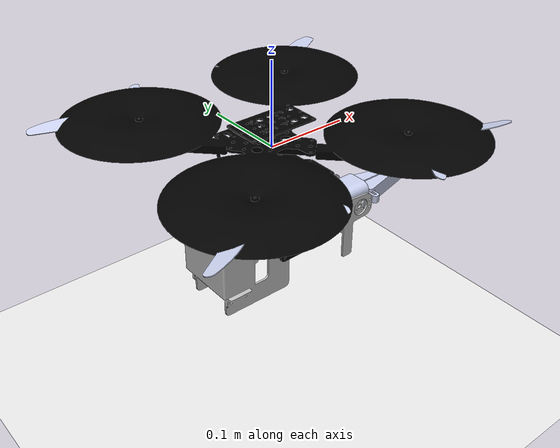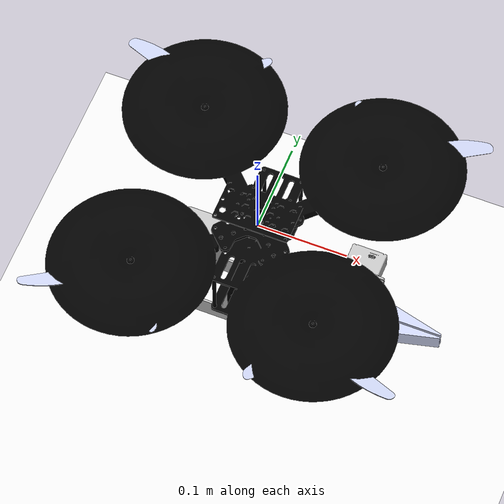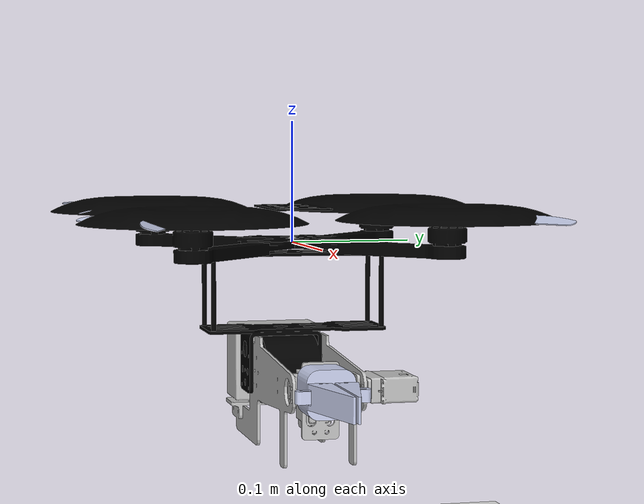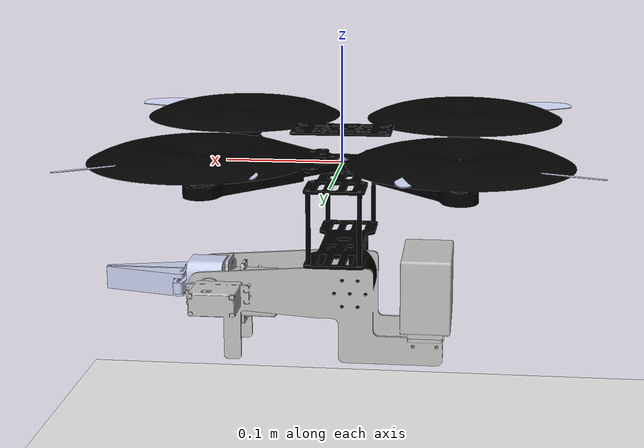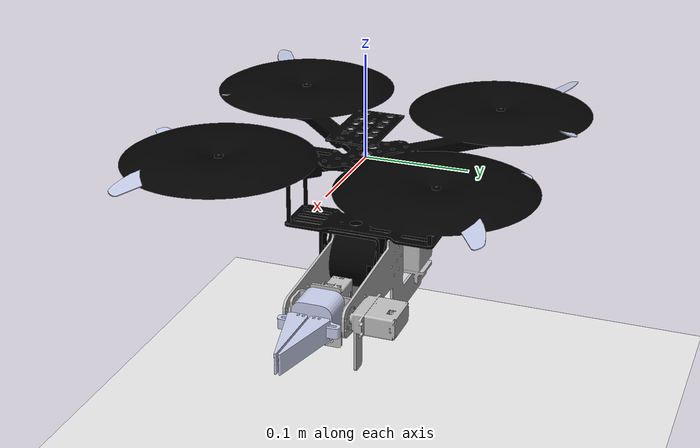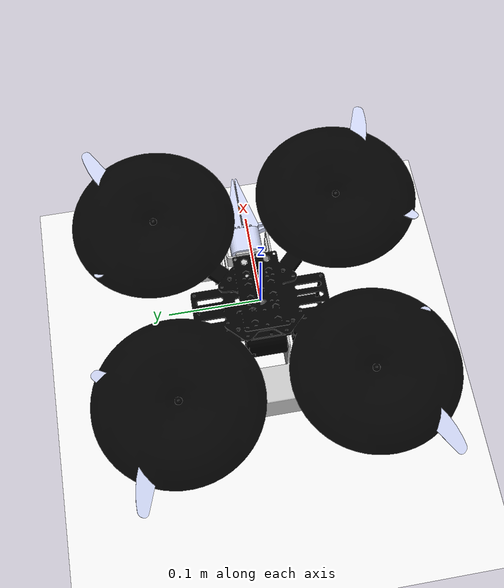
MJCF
<?xml version="1.0" encoding="utf-8"?>
<mujoco model="drone_scene">

  <include file="drone_converted.xml"/>

  <compiler angle="radian" meshdir="meshes" texturedir="."/>
  <option timestep="0.002" integrator="RK4"/>

  <default>
    <joint damping="2" armature="0.02" frictionloss="0.02"/>
    <geom solref="0.02 1" solimp="0.9 0.95 0.002" condim="3" friction="1 0.01 0.001"/>
  </default>

  <asset>
    <texture name="sky" type="skybox" builtin="flat"
             rgb1="0.96 0.96 0.96" rgb2="0.90 0.90 0.90"
             width="256" height="256"/>
  </asset>

  <worldbody>
    <light pos="0 0 2" dir="0 0 -1" diffuse="1 1 1" specular="0.2 0.2 0.2"/>
    <camera name="maincam" pos="0.7 0.7 0.45" quat="0.9239 0 0 0.3827"/>
    <geom name="floor" type="plane" pos="0 0 -0.3" size="2 2 0.1"
          rgba="0.92 0.92 0.92 1" contype="1" conaffinity="1"/>
  </worldbody>

</mujoco>

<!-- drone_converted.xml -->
<mujoco model="drone_urdf">
  <compiler angle="radian" meshdir="meshes" />
  <asset>
    <mesh name="base_link" content_type="model/stl" file="base_link.STL" />
    <mesh name="arm_link_pitch" content_type="model/stl" file="arm_link_pitch.STL" />
    <mesh name="arm_link_pitch2" content_type="model/stl" file="arm_link_pitch2.STL" />
    <mesh name="arm_link_roll" content_type="model/stl" file="arm_link_roll.STL" />
    <mesh name="arm_link_right_finger" content_type="model/stl" file="arm_link_right_finger.STL" />
    <mesh name="arm_link_left_finger" content_type="model/stl" file="arm_link_left_finger.STL" />
    <mesh name="rotor_0" content_type="model/stl" file="rotor_0.STL" />
    <mesh name="rotor_1" content_type="model/stl" file="rotor_1.STL" />
    <mesh name="rotor_2" content_type="model/stl" file="rotor_2.STL" />
    <mesh name="rotor_3" content_type="model/stl" file="rotor_3.STL" />
    </asset>
  <worldbody>
    <body name="base_link" pos="0 0 0" quat="1 0 0 0">
      <freejoint name="base_free" />
      <geom type="mesh" rgba="0 0 0 1" mesh="base_link" />

      <!-- 前视深度相机：机头(+X)前方 6cm，朝 +X 方向看，fovy=60° (类 RealSense D435) -->
      <camera name="depth_cam"
              pos="0.06 0 -0.02"
              xyaxes="0 -1 0 0 0 1"
              fovy="60"/>

      <body name="arm_pitch_link" pos="-0.009 -0.0096 -0.108565">
        <inertial pos="-0.0398454 0.0119006 -0.00382043" quat="-0.000136126 0.576951 -0.00019689 0.816779" mass="0.278848" diaginertia="0.000286784 0.000276262 0.000197652" />
        <joint name="arm_pitch_joint" pos="0 0 0" axis="0 1 0" range="0 1.5708" actuatorfrcrange="-5 5" />
        <geom type="mesh" rgba="0.752941 0.752941 0.752941 1" mesh="arm_link_pitch" />
        <body name="arm_pitch2_link" pos="0.12175 0.00855 0">
          <inertial pos="-0.0235169 4.18533e-06 -0.00768195" quat="0.999822 -0.000819779 0.0188322 -0.00049632" mass="0.0210875" diaginertia="6.40168e-06 4.08924e-06 3.21556e-06" />
          <joint name="arm_pitch2_joint" pos="0 0 0" axis="0 1 0" range="-1.5708 1.5708" actuatorfrcrange="-5 5" />
          <geom type="mesh" rgba="0.752941 0.752941 0.752941 1" mesh="arm_link_pitch2" />

          <!-- 腕部相机：挂在 arm_pitch2_link，位于手指正上方，朝臂延伸方向 (+X) 看 -->
          <camera name="wrist_cam"
                  pos="0.025 0 0.04"
                  xyaxes="0 -1 0 0 0 1"/>

          <body name="arm_roll_link" pos="-0.01275 0 0">
            <inertial pos="0.0214596 0 0" quat="0.707107 0.707107 0 0" mass="0.0484342" diaginertia="1.16041e-05 1.15999e-05 1.03955e-05" />
            <joint name="arm_roll_joint" pos="0 0 0" axis="1 0 0" range="-1.5708 1.5708" actuatorfrcrange="-1 1" />
            <geom type="mesh" rgba="0.792157 0.819608 0.933333 1" mesh="arm_link_roll" />
            <!-- gripper_frame: 夹爪中心参考点，位于 arm_roll_link +X 方向 7cm 处 -->
            <site name="gripper_frame" pos="0.07 0 0" size="0.004" rgba="1 0.3 0 1"/>
            <body name="arm_right_finger_link" pos="0.041 0 0" quat="0 -1 0 0">
              <inertial pos="0.0266573 0.00731144 0" quat="0.531927 0.531927 0.465891 0.465891" mass="0.013758" diaginertia="4.72941e-06 4.43352e-06 6.94702e-07" />
              <joint name="arm_right_finger_joint" pos="0 0 0" axis="0 1 0" type="slide" range="-1.5708 1.5708" actuatorfrcrange="-1 1" />
              <geom type="mesh" rgba="0.792157 0.819608 0.933333 1" mesh="arm_link_right_finger" />
              </body>
            <body name="arm_left_finger_link" pos="0.041 0 0">
              <inertial pos="0.0266573 0.00731144 0" quat="0.531927 0.531927 0.465891 0.465891" mass="0.013758" diaginertia="4.72941e-06 4.43352e-06 6.94702e-07" />
              <joint name="arm_left_finger_joint" pos="0 0 0" axis="0 -1 0" type="slide" range="-1.5708 1.5708" actuatorfrcrange="-1 1" />
              <geom type="mesh" rgba="0.792157 0.819608 0.933333 1" mesh="arm_link_left_finger" />
              </body>
            </body>
          </body>
        </body>
      <body name="rotor0_link" pos="0.123744 0.123744 0.0211606">
        <inertial pos="4.10029e-07 2.17598e-07 0.00394569" quat="0.60751 0.361842 -0.607513 0.361843" mass="0.00513322" diaginertia="9.75117e-06 4.89108e-06 4.89084e-06" />
        <joint name="rotor0_joint" type="hinge" pos="0 0 0" axis="0 0 1" />
        <geom type="mesh" rgba="0.792157 0.819608 0.933333 1" mesh="rotor_0" />
        </body>
      <body name="rotor1_link" pos="-0.123744 0.123744 0.0212">
        <inertial pos="-1.75373e-07 8.47259e-09 0.00390633" quat="0.349938 0.614445 -0.349938 0.614445" mass="0.00513323" diaginertia="9.75113e-06 4.89097e-06 4.89091e-06" />
        <joint name="rotor1_joint" type="hinge" pos="0 0 0" axis="0 0 1" />
        <geom type="mesh" rgba="0.792157 0.819608 0.933333 1" mesh="rotor_1" />
        </body>
      <body name="rotor2_link" pos="-0.123744 -0.123744 0.0212">
        <inertial pos="-4.10029e-07 -2.17598e-07 0.00390632" quat="0.607513 0.361843 -0.60751 0.361842" mass="0.00513322" diaginertia="9.75117e-06 4.89108e-06 4.89084e-06" />
        <joint name="rotor2_joint" type="hinge" pos="0 0 0" axis="0 0 1" />
        <geom type="mesh" rgba="0.792157 0.819608 0.933333 1" mesh="rotor_2" />
        </body>
      <body name="rotor3_link" pos="0.123744 -0.123744 0.0212">
        <inertial pos="1.75373e-07 -8.47259e-09 0.00390633" quat="0.349938 0.614445 -0.349938 0.614445" mass="0.00513323" diaginertia="9.75113e-06 4.89097e-06 4.89091e-06" />
        <joint name="rotor3_joint" type="hinge" pos="0 0 0" axis="0 0 1" />
        <geom type="mesh" rgba="0.792157 0.819608 0.933333 1" mesh="rotor_3" />
        </body>
      <site name="imu_site" pos="0 0 0" size="0.005" />
      </body>
    </worldbody>
  </mujoco>
